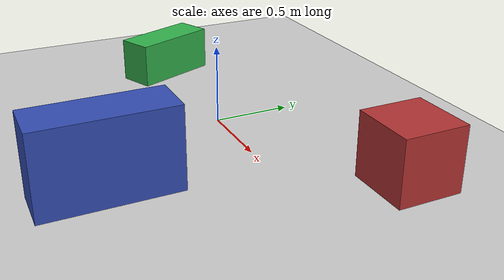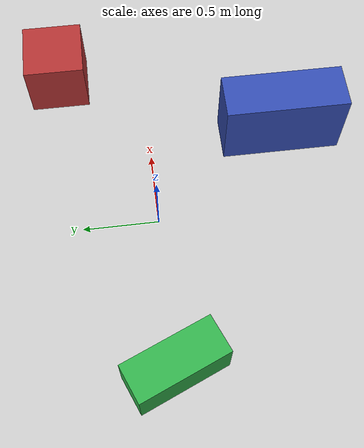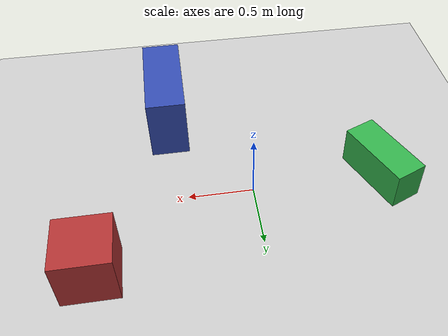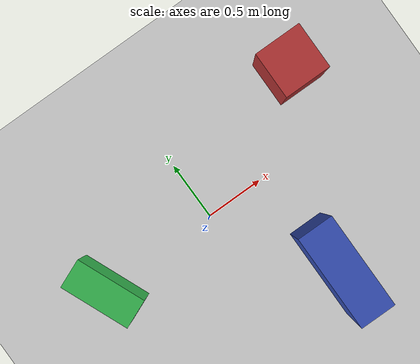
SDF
<?xml version="1.0" ?>
<sdf version="1.8">
  <world name="romi_simple_world">
    <gravity>0 0 -9.8</gravity>

    <plugin filename="ignition-gazebo6-physics-system" name="ignition::gazebo::systems::Physics"/>
    <plugin filename="ignition-gazebo6-user-commands-system" name="ignition::gazebo::systems::UserCommands"/>
    <plugin filename="ignition-gazebo6-scene-broadcaster-system" name="ignition::gazebo::systems::SceneBroadcaster"/>
    <plugin filename="ignition-gazebo6-sensors-system" name="ignition::gazebo::systems::Sensors">
      <render_engine>ogre2</render_engine>
    </plugin>

    <light name="sun" type="directional">
      <cast_shadows>true</cast_shadows>
      <pose>0 0 10 0 0 0</pose>
      <diffuse>0.8 0.8 0.8 1</diffuse>
      <specular>0.2 0.2 0.2 1</specular>
      <attenuation>
        <range>1000</range>
        <constant>0.9</constant>
        <linear>0.01</linear>
        <quadratic>0.001</quadratic>
      </attenuation>
      <direction>-0.5 0.1 -0.9</direction>
    </light>

    <model name="floor_plane">
      <static>true</static>
      <pose>0 0 0 0 0 0</pose>
      <link name="link">
        <collision name="collision">
          <geometry>
            <plane>
              <normal>0 0 1</normal>
              <size>20 20</size>
            </plane>
          </geometry>
          <surface>
            <friction>
              <ode>
                <mu>1.0</mu>
                <mu2>1.0</mu2>
              </ode>
            </friction>
          </surface>
        </collision>
        <visual name="visual">
          <geometry>
            <plane>
              <normal>0 0 1</normal>
              <size>20 20</size>
            </plane>
          </geometry>
          <material>
            <ambient>0.8 0.8 0.8 1</ambient>
            <diffuse>0.8 0.8 0.8 1</diffuse>
          </material>
        </visual>
      </link>
    </model>

    <model name="box_obstacle_1">
      <static>true</static>
      <pose>1.2 0.6 0.2 0 0 0</pose>
      <link name="link">
        <collision name="collision">
          <geometry>
            <box>
              <size>0.4 0.4 0.4</size>
            </box>
          </geometry>
        </collision>
        <visual name="visual">
          <geometry>
            <box>
              <size>0.4 0.4 0.4</size>
            </box>
          </geometry>
          <material>
            <ambient>0.7 0.2 0.2 1</ambient>
            <diffuse>0.7 0.2 0.2 1</diffuse>
          </material>
        </visual>
      </link>
    </model>

    <model name="box_obstacle_2">
      <static>true</static>
      <pose>0.6 -0.9 0.25 0 0 0</pose>
      <link name="link">
        <collision name="collision">
          <geometry>
            <box>
              <size>0.3 0.8 0.5</size>
            </box>
          </geometry>
        </collision>
        <visual name="visual">
          <geometry>
            <box>
              <size>0.3 0.8 0.5</size>
            </box>
          </geometry>
          <material>
            <ambient>0.2 0.3 0.7 1</ambient>
            <diffuse>0.2 0.3 0.7 1</diffuse>
          </material>
        </visual>
      </link>
    </model>

    <model name="box_obstacle_3">
      <static>true</static>
      <pose>-1.0 0.0 0.15 0 0 0.4</pose>
      <link name="link">
        <collision name="collision">
          <geometry>
            <box>
              <size>0.25 0.6 0.3</size>
            </box>
          </geometry>
        </collision>
        <visual name="visual">
          <geometry>
            <box>
              <size>0.25 0.6 0.3</size>
            </box>
          </geometry>
          <material>
            <ambient>0.2 0.7 0.3 1</ambient>
            <diffuse>0.2 0.7 0.3 1</diffuse>
          </material>
        </visual>
      </link>
    </model>
  </world>
</sdf>
